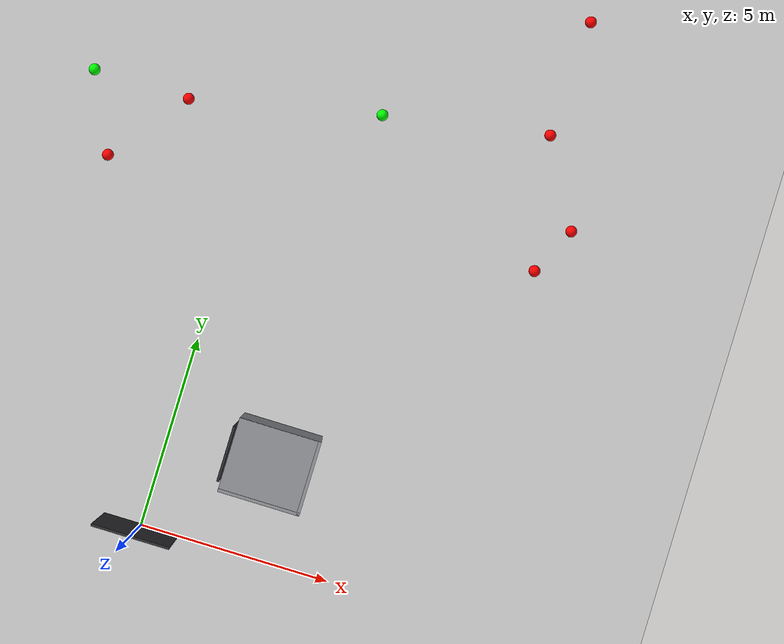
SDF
<sdf version="1.7">
 <world name="generated_world">
  <include><uri>model://sun</uri></include>
  <include><uri>model://ground_plane</uri></include>
  <model name="dynamic_main_entrance">
   <static>false</static>
   <pose>0.0000 0.0000 1.2000 0.0000 0.0000 1.5708</pose>
   <link name="left_panel">
    <gravity>false</gravity>
    <kinematic>true</kinematic>
    <pose>0.0000 -0.5000 0.0000 0.0000 0.0000 0.0000</pose>
    <collision name="left_panel_collision">
     <geometry><box><size>0.0600 1.0000 2.4000</size></box></geometry>
    </collision>
    <visual name="left_panel_visual">
     <geometry><box><size>0.0600 1.0000 2.4000</size></box></geometry>
     <material><ambient>0.18 0.18 0.20 1</ambient><diffuse>0.18 0.18 0.20 1</diffuse></material>
    </visual>
   </link>
   <link name="right_panel">
    <gravity>false</gravity>
    <kinematic>true</kinematic>
    <pose>0.0000 0.5000 0.0000 0.0000 0.0000 0.0000</pose>
    <collision name="right_panel_collision">
     <geometry><box><size>0.0600 1.0000 2.4000</size></box></geometry>
    </collision>
    <visual name="right_panel_visual">
     <geometry><box><size>0.0600 1.0000 2.4000</size></box></geometry>
     <material><ambient>0.18 0.18 0.20 1</ambient><diffuse>0.18 0.18 0.20 1</diffuse></material>
    </visual>
   </link>
  </model>
  <model name="dynamic_elevator_floor_0">
   <static>false</static>
   <pose>1.6500 2.6000 1.2000 0.0000 0.0000 3.1416</pose>
   <link name="left_panel">
    <gravity>false</gravity>
    <kinematic>true</kinematic>
    <pose>0.0000 -0.3500 0.0000 0.0000 0.0000 0.0000</pose>
    <collision name="left_panel_collision">
     <geometry><box><size>0.0600 0.7000 2.2000</size></box></geometry>
    </collision>
    <visual name="left_panel_visual">
     <geometry><box><size>0.0600 0.7000 2.2000</size></box></geometry>
     <material><ambient>0.18 0.18 0.20 1</ambient><diffuse>0.18 0.18 0.20 1</diffuse></material>
    </visual>
   </link>
   <link name="right_panel">
    <gravity>false</gravity>
    <kinematic>true</kinematic>
    <pose>0.0000 0.3500 0.0000 0.0000 0.0000 0.0000</pose>
    <collision name="right_panel_collision">
     <geometry><box><size>0.0600 0.7000 2.2000</size></box></geometry>
    </collision>
    <visual name="right_panel_visual">
     <geometry><box><size>0.0600 0.7000 2.2000</size></box></geometry>
     <material><ambient>0.18 0.18 0.20 1</ambient><diffuse>0.18 0.18 0.20 1</diffuse></material>
    </visual>
   </link>
  </model>
  <model name="dynamic_elevator_main">
   <static>false</static>
   <pose>2.7600 2.6000 1.0300 0.0000 0.0000 -1.5708</pose>
   <link name="car">
    <gravity>false</gravity>
    <kinematic>true</kinematic>
    <collision name="car_floor_collision">
     <pose>0.0000 0.0000 -1.0900 0.0000 0.0000 0.0000</pose>
     <geometry><box><size>1.9000 2.1000 0.1200</size></box></geometry>
    </collision>
    <visual name="car_floor_visual">
     <pose>0.0000 0.0000 -1.0900 0.0000 0.0000 0.0000</pose>
     <geometry><box><size>1.9000 2.1000 0.1200</size></box></geometry>
     <material><ambient>0.32 0.32 0.35 1</ambient><diffuse>0.32 0.32 0.35 1</diffuse></material>
    </visual>
    <collision name="back_collision">
     <pose>0.0000 1.0100 0.0000 0.0000 0.0000 0.0000</pose>
     <geometry><box><size>1.9000 0.0800 2.3000</size></box></geometry>
    </collision>
    <visual name="back_visual">
     <pose>0.0000 1.0100 0.0000 0.0000 0.0000 0.0000</pose>
     <geometry><box><size>1.9000 0.0800 2.3000</size></box></geometry>
     <material><ambient>0.55 0.56 0.58 1</ambient><diffuse>0.55 0.56 0.58 1</diffuse></material>
    </visual>
    <collision name="left_collision">
     <pose>-0.9100 0.0000 0.0000 0.0000 0.0000 0.0000</pose>
     <geometry><box><size>0.0800 2.1000 2.3000</size></box></geometry>
    </collision>
    <visual name="left_visual">
     <pose>-0.9100 0.0000 0.0000 0.0000 0.0000 0.0000</pose>
     <geometry><box><size>0.0800 2.1000 2.3000</size></box></geometry>
     <material><ambient>0.55 0.56 0.58 1</ambient><diffuse>0.55 0.56 0.58 1</diffuse></material>
    </visual>
    <collision name="right_collision">
     <pose>0.9100 0.0000 0.0000 0.0000 0.0000 0.0000</pose>
     <geometry><box><size>0.0800 2.1000 2.3000</size></box></geometry>
    </collision>
    <visual name="right_visual">
     <pose>0.9100 0.0000 0.0000 0.0000 0.0000 0.0000</pose>
     <geometry><box><size>0.0800 2.1000 2.3000</size></box></geometry>
     <material><ambient>0.55 0.56 0.58 1</ambient><diffuse>0.55 0.56 0.58 1</diffuse></material>
    </visual>
    <collision name="top_collision">
     <pose>0.0000 0.0000 1.1200 0.0000 0.0000 0.0000</pose>
     <geometry><box><size>1.9000 2.1000 0.0600</size></box></geometry>
    </collision>
    <visual name="top_visual">
     <pose>0.0000 0.0000 1.1200 0.0000 0.0000 0.0000</pose>
     <geometry><box><size>1.9000 2.1000 0.0600</size></box></geometry>
     <material><ambient>0.55 0.56 0.58 1</ambient><diffuse>0.55 0.56 0.58 1</diffuse></material>
    </visual>
   </link>
  </model>
  <model name="danger_red_sphere_01">
   <static>true</static>
   <pose>-2.028155 10.868349 0.150000 0.000000 0.000000 0.000000</pose>
   <link name="link">
    <collision name="collision"><geometry><sphere><radius>0.150</radius></sphere></geometry></collision>
    <visual name="visual">
     <geometry><sphere><radius>0.150</radius></sphere></geometry>
     <material><ambient>1.0 0.0 0.0 1.0</ambient><diffuse>1.0 0.0 0.0 1.0</diffuse></material>
    </visual>
   </link>
  </model>
  <model name="danger_red_sphere_04">
   <static>true</static>
   <pose>7.787105 9.216633 0.150000 0.000000 0.000000 0.000000</pose>
   <link name="link">
    <collision name="collision"><geometry><sphere><radius>0.150</radius></sphere></geometry></collision>
    <visual name="visual">
     <geometry><sphere><radius>0.150</radius></sphere></geometry>
     <material><ambient>1.0 0.0 0.0 1.0</ambient><diffuse>1.0 0.0 0.0 1.0</diffuse></material>
    </visual>
   </link>
  </model>
  <model name="distractor_green_sphere_02">
   <static>true</static>
   <pose>2.872979 11.917759 0.150000 0.000000 0.000000 0.000000</pose>
   <link name="link">
    <collision name="collision"><geometry><sphere><radius>0.150</radius></sphere></geometry></collision>
    <visual name="visual">
     <geometry><sphere><radius>0.150</radius></sphere></geometry>
     <material><ambient>0.0 1.0 0.0 1.0</ambient><diffuse>0.0 1.0 0.0 1.0</diffuse></material>
    </visual>
   </link>
  </model>
  <model name="distractor_green_sphere_06">
   <static>true</static>
   <pose>-4.569498 10.885488 0.150000 0.000000 0.000000 0.000000</pose>
   <link name="link">
    <collision name="collision"><geometry><sphere><radius>0.150</radius></sphere></geometry></collision>
    <visual name="visual">
     <geometry><sphere><radius>0.150</radius></sphere></geometry>
     <material><ambient>0.0 1.0 0.0 1.0</ambient><diffuse>0.0 1.0 0.0 1.0</diffuse></material>
    </visual>
   </link>
  </model>
  <model name="danger_red_sphere_06">
   <static>true</static>
   <pose>7.163401 12.678752 0.150000 0.000000 0.000000 0.000000</pose>
   <link name="link">
    <collision name="collision"><geometry><sphere><radius>0.150</radius></sphere></geometry></collision>
    <visual name="visual">
     <geometry><sphere><radius>0.150</radius></sphere></geometry>
     <material><ambient>1.0 0.0 0.0 1.0</ambient><diffuse>1.0 0.0 0.0 1.0</diffuse></material>
    </visual>
   </link>
  </model>
  <model name="danger_red_sphere_07">
   <static>true</static>
   <pose>-3.598476 8.879071 0.150000 0.000000 0.000000 0.000000</pose>
   <link name="link">
    <collision name="collision"><geometry><sphere><radius>0.150</radius></sphere></geometry></collision>
    <visual name="visual">
     <geometry><sphere><radius>0.150</radius></sphere></geometry>
     <material><ambient>1.0 0.0 0.0 1.0</ambient><diffuse>1.0 0.0 0.0 1.0</diffuse></material>
    </visual>
   </link>
  </model>
  <model name="danger_red_sphere_08">
   <static>true</static>
   <pose>8.399338 10.465232 0.150000 0.000000 0.000000 0.000000</pose>
   <link name="link">
    <collision name="collision"><geometry><sphere><radius>0.150</radius></sphere></geometry></collision>
    <visual name="visual">
     <geometry><sphere><radius>0.150</radius></sphere></geometry>
     <material><ambient>1.0 0.0 0.0 1.0</ambient><diffuse>1.0 0.0 0.0 1.0</diffuse></material>
    </visual>
   </link>
  </model>
  <model name="danger_red_sphere_10">
   <static>true</static>
   <pose>7.314436 15.774147 0.150000 0.000000 0.000000 0.000000</pose>
   <link name="link">
    <collision name="collision"><geometry><sphere><radius>0.150</radius></sphere></geometry></collision>
    <visual name="visual">
     <geometry><sphere><radius>0.150</radius></sphere></geometry>
     <material><ambient>1.0 0.0 0.0 1.0</ambient><diffuse>1.0 0.0 0.0 1.0</diffuse></material>
    </visual>
   </link>
  </model>
 </world>
</sdf>
